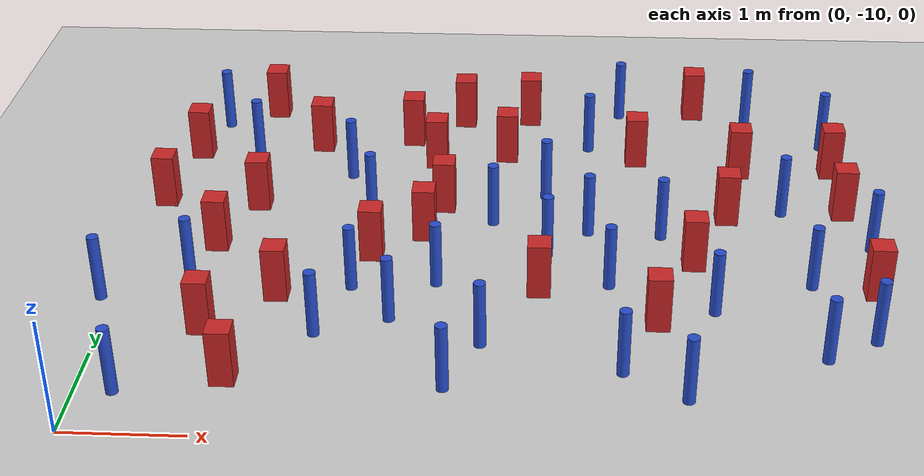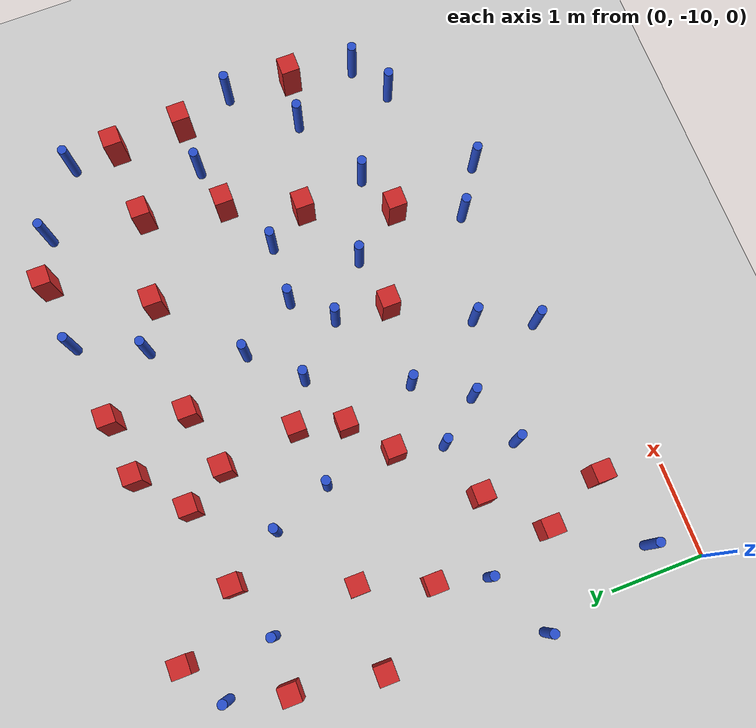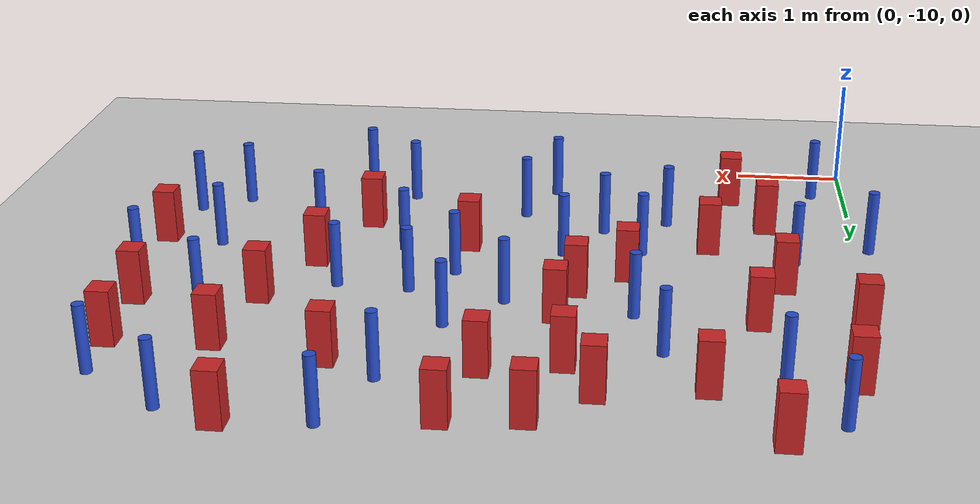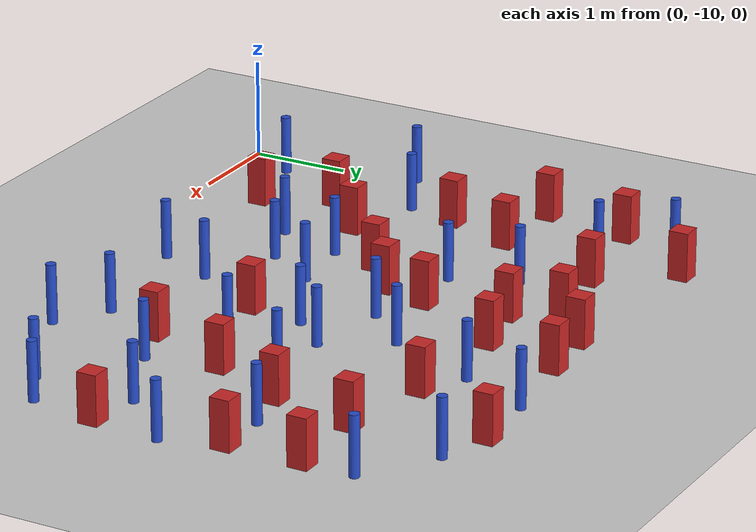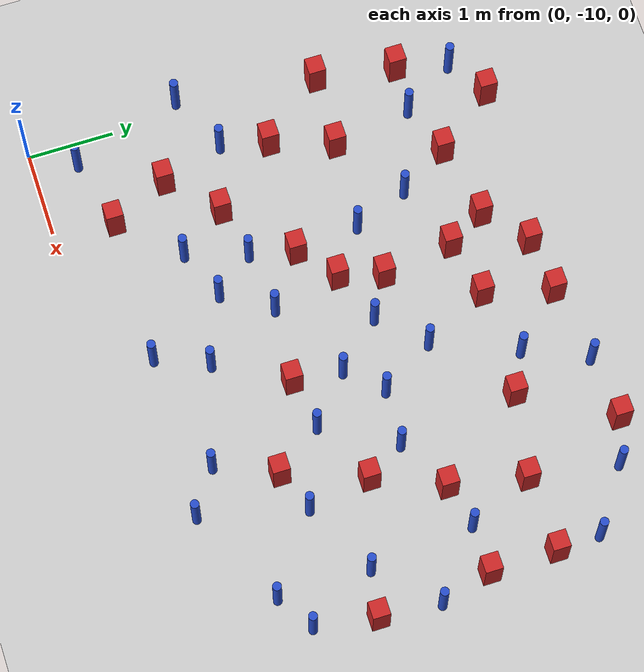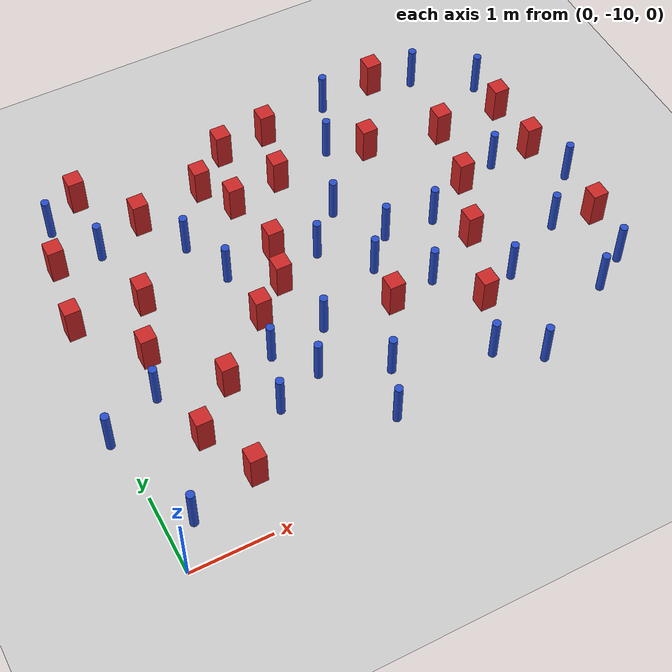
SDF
<sdf version="1.6">
 <world name="default">
  <model name="ground_plane">
   <static>1</static>
   <link name="link">
    <collision name="collision">
     <geometry><plane><normal>0 0 1</normal><size>100 100</size></plane></geometry>
     <surface><friction><ode><mu>100</mu><mu2>50</mu2></ode></friction></surface>
    </collision>
    <visual name="visual">
     <cast_shadows>0</cast_shadows>
     <geometry><plane><normal>0 0 1</normal><size>100 100</size></plane></geometry>
     <material>
      <ambient>1.0 1.0 1.0 1.0</ambient>
      <diffuse>0.8 0.8 0.8 1.0</diffuse>
      <specular>0.01 0.01 0.01 1.000000</specular>
     </material>
    </visual>
   </link>
  </model>
  <model name="pole_obstacle1">
   <static>true</static>
   <pose>6.48809205417 -7.17369330818 -3.09024884793e-07 -7.19054271911e-07 -2.1131507516e-07 -1.93935509277e-07</pose>
   <link name="link">
    <pose>0 0 0.3 0 -0 0</pose>
    <inertial>
     <mass>1</mass>
     <inertia><ixx>0.145833</ixx><ixy>0</ixy><ixz>0</ixz><iyy>0.145833</iyy><iyz>0</iyz><izz>0.125</izz></inertia>
    </inertial>
    <collision name="collision">
     <geometry><cylinder><radius>0.05</radius><length>.6</length></cylinder></geometry>
    </collision>
    <visual name="visual">
     <geometry><cylinder><radius>0.05</radius><length>.6</length></cylinder></geometry>
     <material>
      <script><name>Gazebo/Blue</name><uri>file://media/materials/scripts/gazebo.material</uri></script>
     </material>
    </visual>
   </link>
  </model>
  <model name="square_post_obstacle4">
   <static>true</static>
   <pose>3.57101372256 -7.95209607178 -4.36207812815e-07 3.75137919937e-06 9.77721102514e-07 2.47381364184e-05</pose>
   <link name="link">
    <pose>0 0 0.25 0 -0 0</pose>
    <inertial>
     <mass>100</mass>
     <inertia>
      <ixx>0.166667</ixx>
      <ixy>0</ixy>
      <ixz>0</ixz>
      <iyy>0.166667</iyy>
      <iyz>0</iyz>
      <izz>0.166667</izz>
     </inertia>
    </inertial>
    <collision name="collision"><geometry><box><size>.2 .2 .5</size></box></geometry></collision>
    <visual name="visual">
     <geometry><box><size>.2 .2 .5</size></box></geometry>
     <material>
      <script><name>Gazebo/Red</name><uri>file://media/materials/scripts/gazebo.material</uri></script>
     </material>
    </visual>
   </link>
  </model>
  <model name="pole_obstacle8">
   <static>true</static>
   <pose>0.40500175959 -5.05351949 -3.09024884793e-07 -7.19054271912e-07 -2.1131507513e-07 -1.93935509262e-07</pose>
   <link name="link">
    <pose>0 0 0.3 0 -0 0</pose>
    <inertial>
     <mass>1</mass>
     <inertia><ixx>0.145833</ixx><ixy>0</ixy><ixz>0</ixz><iyy>0.145833</iyy><iyz>0</iyz><izz>0.125</izz></inertia>
    </inertial>
    <collision name="collision">
     <geometry><cylinder><radius>0.05</radius><length>.6</length></cylinder></geometry>
    </collision>
    <visual name="visual">
     <geometry><cylinder><radius>0.05</radius><length>.6</length></cylinder></geometry>
     <material>
      <script><name>Gazebo/Blue</name><uri>file://media/materials/scripts/gazebo.material</uri></script>
     </material>
    </visual>
   </link>
  </model>
  <model name="square_post_obstacle14">
   <static>true</static>
   <pose>5.42709874171 -5.83818717794 -4.36207812815e-07 3.75137919937e-06 9.77721102514e-07 2.47381364184e-05</pose>
   <link name="link">
    <pose>0 0 0.25 0 -0 0</pose>
    <inertial>
     <mass>100</mass>
     <inertia>
      <ixx>0.166667</ixx>
      <ixy>0</ixy>
      <ixz>0</ixz>
      <iyy>0.166667</iyy>
      <iyz>0</iyz>
      <izz>0.166667</izz>
     </inertia>
    </inertial>
    <collision name="collision"><geometry><box><size>.2 .2 .5</size></box></geometry></collision>
    <visual name="visual">
     <geometry><box><size>.2 .2 .5</size></box></geometry>
     <material>
      <script><name>Gazebo/Red</name><uri>file://media/materials/scripts/gazebo.material</uri></script>
     </material>
    </visual>
   </link>
  </model>
  <model name="pole_obstacle19">
   <static>true</static>
   <pose>5.58174144384 -4.82042936975 -3.09024884793e-07 -7.19054271911e-07 -2.1131507516e-07 -1.93935509277e-07</pose>
   <link name="link">
    <pose>0 0 0.3 0 -0 0</pose>
    <inertial>
     <mass>1</mass>
     <inertia><ixx>0.145833</ixx><ixy>0</ixy><ixz>0</ixz><iyy>0.145833</iyy><iyz>0</iyz><izz>0.125</izz></inertia>
    </inertial>
    <collision name="collision">
     <geometry><cylinder><radius>0.05</radius><length>.6</length></cylinder></geometry>
    </collision>
    <visual name="visual">
     <geometry><cylinder><radius>0.05</radius><length>.6</length></cylinder></geometry>
     <material>
      <script><name>Gazebo/Blue</name><uri>file://media/materials/scripts/gazebo.material</uri></script>
     </material>
    </visual>
   </link>
  </model>
  <model name="square_post_obstacle16">
   <static>true</static>
   <pose>0.86441685356 -4.75954110779 -4.36207812815e-07 3.75137919937e-06 9.77721102514e-07 2.47381364184e-05</pose>
   <link name="link">
    <pose>0 0 0.25 0 -0 0</pose>
    <inertial>
     <mass>100</mass>
     <inertia>
      <ixx>0.166667</ixx>
      <ixy>0</ixy>
      <ixz>0</ixz>
      <iyy>0.166667</iyy>
      <iyz>0</iyz>
      <izz>0.166667</izz>
     </inertia>
    </inertial>
    <collision name="collision"><geometry><box><size>.2 .2 .5</size></box></geometry></collision>
    <visual name="visual">
     <geometry><box><size>.2 .2 .5</size></box></geometry>
     <material>
      <script><name>Gazebo/Red</name><uri>file://media/materials/scripts/gazebo.material</uri></script>
     </material>
    </visual>
   </link>
  </model>
  <model name="pole_obstacle43">
   <static>true</static>
   <pose>3.60631353478 -6.36651040037 -3.09024884793e-07 -7.19054271912e-07 -2.11315075134e-07 -1.93935509266e-07</pose>
   <link name="link">
    <pose>0 0 0.3 0 -0 0</pose>
    <inertial>
     <mass>1</mass>
     <inertia><ixx>0.145833</ixx><ixy>0</ixy><ixz>0</ixz><iyy>0.145833</iyy><iyz>0</iyz><izz>0.125</izz></inertia>
    </inertial>
    <collision name="collision">
     <geometry><cylinder><radius>0.05</radius><length>.6</length></cylinder></geometry>
    </collision>
    <visual name="visual">
     <geometry><cylinder><radius>0.05</radius><length>.6</length></cylinder></geometry>
     <material>
      <script><name>Gazebo/Blue</name><uri>file://media/materials/scripts/gazebo.material</uri></script>
     </material>
    </visual>
   </link>
  </model>
  <model name="pole_obstacle45">
   <static>true</static>
   <pose>4.3236556456 -4.70204553418 -3.09024884793e-07 -7.19054271911e-07 -2.1131507516e-07 -1.93935509277e-07</pose>
   <link name="link">
    <pose>0 0 0.3 0 -0 0</pose>
    <inertial>
     <mass>1</mass>
     <inertia><ixx>0.145833</ixx><ixy>0</ixy><ixz>0</ixz><iyy>0.145833</iyy><iyz>0</iyz><izz>0.125</izz></inertia>
    </inertial>
    <collision name="collision">
     <geometry><cylinder><radius>0.05</radius><length>.6</length></cylinder></geometry>
    </collision>
    <visual name="visual">
     <geometry><cylinder><radius>0.05</radius><length>.6</length></cylinder></geometry>
     <material>
      <script><name>Gazebo/Blue</name><uri>file://media/materials/scripts/gazebo.material</uri></script>
     </material>
    </visual>
   </link>
  </model>
  <model name="pole_obstacle47">
   <static>true</static>
   <pose>5.89058240361 -8.85058872005 -3.09024884793e-07 -7.19054271912e-07 -2.1131507513e-07 -1.93935509261e-07</pose>
   <link name="link">
    <pose>0 0 0.3 0 -0 0</pose>
    <inertial>
     <mass>1</mass>
     <inertia><ixx>0.145833</ixx><ixy>0</ixy><ixz>0</ixz><iyy>0.145833</iyy><iyz>0</iyz><izz>0.125</izz></inertia>
    </inertial>
    <collision name="collision">
     <geometry><cylinder><radius>0.05</radius><length>.6</length></cylinder></geometry>
    </collision>
    <visual name="visual">
     <geometry><cylinder><radius>0.05</radius><length>.6</length></cylinder></geometry>
     <material>
      <script><name>Gazebo/Blue</name><uri>file://media/materials/scripts/gazebo.material</uri></script>
     </material>
    </visual>
   </link>
  </model>
  <model name="square_post_obstacle44">
   <static>true</static>
   <pose>4.9054231305 -7.48862383246 -4.36207812815e-07 3.75137919937e-06 9.77721102514e-07 2.47381364184e-05</pose>
   <link name="link">
    <pose>0 0 0.25 0 -0 0</pose>
    <inertial>
     <mass>100</mass>
     <inertia>
      <ixx>0.166667</ixx>
      <ixy>0</ixy>
      <ixz>0</ixz>
      <iyy>0.166667</iyy>
      <iyz>0</iyz>
      <izz>0.166667</izz>
     </inertia>
    </inertial>
    <collision name="collision"><geometry><box><size>.2 .2 .5</size></box></geometry></collision>
    <visual name="visual">
     <geometry><box><size>.2 .2 .5</size></box></geometry>
     <material>
      <script><name>Gazebo/Red</name><uri>file://media/materials/scripts/gazebo.material</uri></script>
     </material>
    </visual>
   </link>
  </model>
  <model name="pole_obstacle59">
   <static>true</static>
   <pose>4.25340388266 -9.08597455583 -3.09024884793e-07 -7.19054271912e-07 -2.1131507513e-07 -1.93935509261e-07</pose>
   <link name="link">
    <pose>0 0 0.3 0 -0 0</pose>
    <inertial>
     <mass>1</mass>
     <inertia><ixx>0.145833</ixx><ixy>0</ixy><ixz>0</ixz><iyy>0.145833</iyy><iyz>0</iyz><izz>0.125</izz></inertia>
    </inertial>
    <collision name="collision">
     <geometry><cylinder><radius>0.05</radius><length>.6</length></cylinder></geometry>
    </collision>
    <visual name="visual">
     <geometry><cylinder><radius>0.05</radius><length>.6</length></cylinder></geometry>
     <material>
      <script><name>Gazebo/Blue</name><uri>file://media/materials/scripts/gazebo.material</uri></script>
     </material>
    </visual>
   </link>
  </model>
  <model name="pole_obstacle62">
   <static>true</static>
   <pose>1.97646290646 -7.95808642788 -3.09024884793e-07 -7.19054271911e-07 -2.1131507517e-07 -1.93935509283e-07</pose>
   <link name="link">
    <pose>0 0 0.3 0 -0 0</pose>
    <inertial>
     <mass>1</mass>
     <inertia><ixx>0.145833</ixx><ixy>0</ixy><ixz>0</ixz><iyy>0.145833</iyy><iyz>0</iyz><izz>0.125</izz></inertia>
    </inertial>
    <collision name="collision">
     <geometry><cylinder><radius>0.05</radius><length>.6</length></cylinder></geometry>
    </collision>
    <visual name="visual">
     <geometry><cylinder><radius>0.05</radius><length>.6</length></cylinder></geometry>
     <material>
      <script><name>Gazebo/Blue</name><uri>file://media/materials/scripts/gazebo.material</uri></script>
     </material>
    </visual>
   </link>
  </model>
  <model name="pole_obstacle63">
   <static>true</static>
   <pose>3.63198516604 -7.38031323959 -3.09024884793e-07 -7.19054271912e-07 -2.11315075134e-07 -1.93935509266e-07</pose>
   <link name="link">
    <pose>0 0 0.3 0 -0 0</pose>
    <inertial>
     <mass>1</mass>
     <inertia><ixx>0.145833</ixx><ixy>0</ixy><ixz>0</ixz><iyy>0.145833</iyy><iyz>0</iyz><izz>0.125</izz></inertia>
    </inertial>
    <collision name="collision">
     <geometry><cylinder><radius>0.05</radius><length>.6</length></cylinder></geometry>
    </collision>
    <visual name="visual">
     <geometry><cylinder><radius>0.05</radius><length>.6</length></cylinder></geometry>
     <material>
      <script><name>Gazebo/Blue</name><uri>file://media/materials/scripts/gazebo.material</uri></script>
     </material>
    </visual>
   </link>
  </model>
  <model name="square_post_obstacle55">
   <static>true</static>
   <pose>3.42765638652 -4.82885019431 -4.36207812815e-07 3.75137919937e-06 9.77721102514e-07 2.47381364184e-05</pose>
   <link name="link">
    <pose>0 0 0.25 0 -0 0</pose>
    <inertial>
     <mass>100</mass>
     <inertia>
      <ixx>0.166667</ixx>
      <ixy>0</ixy>
      <ixz>0</ixz>
      <iyy>0.166667</iyy>
      <iyz>0</iyz>
      <izz>0.166667</izz>
     </inertia>
    </inertial>
    <collision name="collision"><geometry><box><size>.2 .2 .5</size></box></geometry></collision>
    <visual name="visual">
     <geometry><box><size>.2 .2 .5</size></box></geometry>
     <material>
      <script><name>Gazebo/Red</name><uri>file://media/materials/scripts/gazebo.material</uri></script>
     </material>
    </visual>
   </link>
  </model>
  <model name="pole_obstacle71">
   <static>true</static>
   <pose>5.75891281308 -6.58576929097 -3.09024884793e-07 -7.19054271911e-07 -2.1131507516e-07 -1.93935509277e-07</pose>
   <link name="link">
    <pose>0 0 0.3 0 -0 0</pose>
    <inertial>
     <mass>1</mass>
     <inertia><ixx>0.145833</ixx><ixy>0</ixy><ixz>0</ixz><iyy>0.145833</iyy><iyz>0</iyz><izz>0.125</izz></inertia>
    </inertial>
    <collision name="collision">
     <geometry><cylinder><radius>0.05</radius><length>.6</length></cylinder></geometry>
    </collision>
    <visual name="visual">
     <geometry><cylinder><radius>0.05</radius><length>.6</length></cylinder></geometry>
     <material>
      <script><name>Gazebo/Blue</name><uri>file://media/materials/scripts/gazebo.material</uri></script>
     </material>
    </visual>
   </link>
  </model>
  <model name="pole_obstacle74">
   <static>true</static>
   <pose>6.27977150792 -5.2993740798 -3.09024884793e-07 -7.19054271911e-07 -2.1131507516e-07 -1.93935509277e-07</pose>
   <link name="link">
    <pose>0 0 0.3 0 -0 0</pose>
    <inertial>
     <mass>1</mass>
     <inertia><ixx>0.145833</ixx><ixy>0</ixy><ixz>0</ixz><iyy>0.145833</iyy><iyz>0</iyz><izz>0.125</izz></inertia>
    </inertial>
    <collision name="collision">
     <geometry><cylinder><radius>0.05</radius><length>.6</length></cylinder></geometry>
    </collision>
    <visual name="visual">
     <geometry><cylinder><radius>0.05</radius><length>.6</length></cylinder></geometry>
     <material>
      <script><name>Gazebo/Blue</name><uri>file://media/materials/scripts/gazebo.material</uri></script>
     </material>
    </visual>
   </link>
  </model>
  <model name="pole_obstacle75">
   <static>true</static>
   <pose>6.31661885191 -8.58566461783 -3.09024884793e-07 -7.19054271912e-07 -2.1131507513e-07 -1.93935509261e-07</pose>
   <link name="link">
    <pose>0 0 0.3 0 -0 0</pose>
    <inertial>
     <mass>1</mass>
     <inertia><ixx>0.145833</ixx><ixy>0</ixy><ixz>0</ixz><iyy>0.145833</iyy><iyz>0</iyz><izz>0.125</izz></inertia>
    </inertial>
    <collision name="collision">
     <geometry><cylinder><radius>0.05</radius><length>.6</length></cylinder></geometry>
    </collision>
    <visual name="visual">
     <geometry><cylinder><radius>0.05</radius><length>.6</length></cylinder></geometry>
     <material>
      <script><name>Gazebo/Blue</name><uri>file://media/materials/scripts/gazebo.material</uri></script>
     </material>
    </visual>
   </link>
  </model>
  <model name="pole_obstacle79">
   <static>true</static>
   <pose>2.01629400774 -6.68462353078 -3.09024884793e-07 -7.19054271912e-07 -2.11315075136e-07 -1.93935509266e-07</pose>
   <link name="link">
    <pose>0 0 0.3 0 -0 0</pose>
    <inertial>
     <mass>1</mass>
     <inertia><ixx>0.145833</ixx><ixy>0</ixy><ixz>0</ixz><iyy>0.145833</iyy><iyz>0</iyz><izz>0.125</izz></inertia>
    </inertial>
    <collision name="collision">
     <geometry><cylinder><radius>0.05</radius><length>.6</length></cylinder></geometry>
    </collision>
    <visual name="visual">
     <geometry><cylinder><radius>0.05</radius><length>.6</length></cylinder></geometry>
     <material>
      <script><name>Gazebo/Blue</name><uri>file://media/materials/scripts/gazebo.material</uri></script>
     </material>
    </visual>
   </link>
  </model>
  <model name="square_post_obstacle68">
   <static>true</static>
   <pose>0.105928565827 -6.57649382604 -4.36207812815e-07 3.75137919937e-06 9.77721102514e-07 2.47381364184e-05</pose>
   <link name="link">
    <pose>0 0 0.25 0 -0 0</pose>
    <inertial>
     <mass>100</mass>
     <inertia>
      <ixx>0.166667</ixx>
      <ixy>0</ixy>
      <ixz>0</ixz>
      <iyy>0.166667</iyy>
      <iyz>0</iyz>
      <izz>0.166667</izz>
     </inertia>
    </inertial>
    <collision name="collision"><geometry><box><size>.2 .2 .5</size></box></geometry></collision>
    <visual name="visual">
     <geometry><box><size>.2 .2 .5</size></box></geometry>
     <material>
      <script><name>Gazebo/Red</name><uri>file://media/materials/scripts/gazebo.material</uri></script>
     </material>
    </visual>
   </link>
  </model>
  <model name="pole_obstacle80">
   <static>true</static>
   <pose>4.16649824505 -7.8521720454 -3.09024884793e-07 -7.19054271911e-07 -2.1131507516e-07 -1.93935509277e-07</pose>
   <link name="link">
    <pose>0 0 0.3 0 -0 0</pose>
    <inertial>
     <mass>1</mass>
     <inertia><ixx>0.145833</ixx><ixy>0</ixy><ixz>0</ixz><iyy>0.145833</iyy><iyz>0</iyz><izz>0.125</izz></inertia>
    </inertial>
    <collision name="collision">
     <geometry><cylinder><radius>0.05</radius><length>.6</length></cylinder></geometry>
    </collision>
    <visual name="visual">
     <geometry><cylinder><radius>0.05</radius><length>.6</length></cylinder></geometry>
     <material>
      <script><name>Gazebo/Blue</name><uri>file://media/materials/scripts/gazebo.material</uri></script>
     </material>
    </visual>
   </link>
  </model>
  <model name="square_post_obstacle71">
   <static>true</static>
   <pose>0.254372862998 -5.65609828832 -4.36207812815e-07 3.75137919937e-06 9.77721102514e-07 2.47381364184e-05</pose>
   <link name="link">
    <pose>0 0 0.25 0 -0 0</pose>
    <inertial>
     <mass>100</mass>
     <inertia>
      <ixx>0.166667</ixx>
      <ixy>0</ixy>
      <ixz>0</ixz>
      <iyy>0.166667</iyy>
      <iyz>0</iyz>
      <izz>0.166667</izz>
     </inertia>
    </inertial>
    <collision name="collision"><geometry><box><size>.2 .2 .5</size></box></geometry></collision>
    <visual name="visual">
     <geometry><box><size>.2 .2 .5</size></box></geometry>
     <material>
      <script><name>Gazebo/Red</name><uri>file://media/materials/scripts/gazebo.material</uri></script>
     </material>
    </visual>
   </link>
  </model>
  <model name="pole_obstacle85">
   <static>true</static>
   <pose>1.76453035123 -6.04418195792 -3.09024884793e-07 -7.19054271912e-07 -2.11315075134e-07 -1.93935509265e-07</pose>
   <link name="link">
    <pose>0 0 0.3 0 -0 0</pose>
    <inertial>
     <mass>1</mass>
     <inertia><ixx>0.145833</ixx><ixy>0</ixy><ixz>0</ixz><iyy>0.145833</iyy><iyz>0</iyz><izz>0.125</izz></inertia>
    </inertial>
    <collision name="collision">
     <geometry><cylinder><radius>0.05</radius><length>.6</length></cylinder></geometry>
    </collision>
    <visual name="visual">
     <geometry><cylinder><radius>0.05</radius><length>.6</length></cylinder></geometry>
     <material>
      <script><name>Gazebo/Blue</name><uri>file://media/materials/scripts/gazebo.material</uri></script>
     </material>
    </visual>
   </link>
  </model>
  <model name="square_post_obstacle83">
   <static>true</static>
   <pose>0.719269566033 -7.33229480249 -4.36207812815e-07 3.75137919937e-06 9.77721102514e-07 2.47381364184e-05</pose>
   <link name="link">
    <pose>0 0 0.25 0 -0 0</pose>
    <inertial>
     <mass>100</mass>
     <inertia>
      <ixx>0.166667</ixx>
      <ixy>0</ixy>
      <ixz>0</ixz>
      <iyy>0.166667</iyy>
      <iyz>0</iyz>
      <izz>0.166667</izz>
     </inertia>
    </inertial>
    <collision name="collision"><geometry><box><size>.2 .2 .5</size></box></geometry></collision>
    <visual name="visual">
     <geometry><box><size>.2 .2 .5</size></box></geometry>
     <material>
      <script><name>Gazebo/Red</name><uri>file://media/materials/scripts/gazebo.material</uri></script>
     </material>
    </visual>
   </link>
  </model>
  <model name="pole_obstacle94">
   <static>true</static>
   <pose>3.99373346216 -6.99468903794 -3.09024884793e-07 -7.19054271912e-07 -2.11315075147e-07 -1.93935509272e-07</pose>
   <link name="link">
    <pose>0 0 0.3 0 -0 0</pose>
    <inertial>
     <mass>1</mass>
     <inertia><ixx>0.145833</ixx><ixy>0</ixy><ixz>0</ixz><iyy>0.145833</iyy><iyz>0</iyz><izz>0.125</izz></inertia>
    </inertial>
    <collision name="collision">
     <geometry><cylinder><radius>0.05</radius><length>.6</length></cylinder></geometry>
    </collision>
    <visual name="visual">
     <geometry><cylinder><radius>0.05</radius><length>.6</length></cylinder></geometry>
     <material>
      <script><name>Gazebo/Blue</name><uri>file://media/materials/scripts/gazebo.material</uri></script>
     </material>
    </visual>
   </link>
  </model>
  <model name="square_post_obstacle91">
   <static>true</static>
   <pose>2.67740275657 -6.5851803636 -4.36207812815e-07 3.75137919937e-06 9.77721102514e-07 2.47381364184e-05</pose>
   <link name="link">
    <pose>0 0 0.25 0 -0 0</pose>
    <inertial>
     <mass>100</mass>
     <inertia>
      <ixx>0.166667</ixx>
      <ixy>0</ixy>
      <ixz>0</ixz>
      <iyy>0.166667</iyy>
      <iyz>0</iyz>
      <izz>0.166667</izz>
     </inertia>
    </inertial>
    <collision name="collision"><geometry><box><size>.2 .2 .5</size></box></geometry></collision>
    <visual name="visual">
     <geometry><box><size>.2 .2 .5</size></box></geometry>
     <material>
      <script><name>Gazebo/Red</name><uri>file://media/materials/scripts/gazebo.material</uri></script>
     </material>
    </visual>
   </link>
  </model>
  <model name="square_post_obstacle94">
   <static>true</static>
   <pose>2.29338925497 -5.30892049711 -4.36207812815e-07 3.75137919937e-06 9.77721102514e-07 2.47381364184e-05</pose>
   <link name="link">
    <pose>0 0 0.25 0 -0 0</pose>
    <inertial>
     <mass>100</mass>
     <inertia>
      <ixx>0.166667</ixx>
      <ixy>0</ixy>
      <ixz>0</ixz>
      <iyy>0.166667</iyy>
      <iyz>0</iyz>
      <izz>0.166667</izz>
     </inertia>
    </inertial>
    <collision name="collision"><geometry><box><size>.2 .2 .5</size></box></geometry></collision>
    <visual name="visual">
     <geometry><box><size>.2 .2 .5</size></box></geometry>
     <material>
      <script><name>Gazebo/Red</name><uri>file://media/materials/scripts/gazebo.material</uri></script>
     </material>
    </visual>
   </link>
  </model>
  <model name="square_post_obstacle97">
   <static>true</static>
   <pose>6.29830586947 -5.80716456378 -4.36207812815e-07 3.75137919937e-06 9.77721102514e-07 2.47381364184e-05</pose>
   <link name="link">
    <pose>0 0 0.25 0 -0 0</pose>
    <inertial>
     <mass>100</mass>
     <inertia>
      <ixx>0.166667</ixx>
      <ixy>0</ixy>
      <ixz>0</ixz>
      <iyy>0.166667</iyy>
      <iyz>0</iyz>
      <izz>0.166667</izz>
     </inertia>
    </inertial>
    <collision name="collision"><geometry><box><size>.2 .2 .5</size></box></geometry></collision>
    <visual name="visual">
     <geometry><box><size>.2 .2 .5</size></box></geometry>
     <material>
      <script><name>Gazebo/Red</name><uri>file://media/materials/scripts/gazebo.material</uri></script>
     </material>
    </visual>
   </link>
  </model>
  <model name="pole_obstacle107">
   <static>true</static>
   <pose>1.74908897043 -8.65412429838 -3.09024884793e-07 -7.19054271912e-07 -2.1131507515e-07 -1.93935509273e-07</pose>
   <link name="link">
    <pose>0 0 0.3 0 -0 0</pose>
    <inertial>
     <mass>1</mass>
     <inertia><ixx>0.145833</ixx><ixy>0</ixy><ixz>0</ixz><iyy>0.145833</iyy><iyz>0</iyz><izz>0.125</izz></inertia>
    </inertial>
    <collision name="collision">
     <geometry><cylinder><radius>0.05</radius><length>.6</length></cylinder></geometry>
    </collision>
    <visual name="visual">
     <geometry><cylinder><radius>0.05</radius><length>.6</length></cylinder></geometry>
     <material>
      <script><name>Gazebo/Blue</name><uri>file://media/materials/scripts/gazebo.material</uri></script>
     </material>
    </visual>
   </link>
  </model>
  <model name="square_post_obstacle109">
   <static>true</static>
   <pose>5.06491364532 -4.64301456551 -4.36207812815e-07 3.75137919937e-06 9.77721102514e-07 2.47381364184e-05</pose>
   <link name="link">
    <pose>0 0 0.25 0 -0 0</pose>
    <inertial>
     <mass>100</mass>
     <inertia>
      <ixx>0.166667</ixx>
      <ixy>0</ixy>
      <ixz>0</ixz>
      <iyy>0.166667</iyy>
      <iyz>0</iyz>
      <izz>0.166667</izz>
     </inertia>
    </inertial>
    <collision name="collision"><geometry><box><size>.2 .2 .5</size></box></geometry></collision>
    <visual name="visual">
     <geometry><box><size>.2 .2 .5</size></box></geometry>
     <material>
      <script><name>Gazebo/Red</name><uri>file://media/materials/scripts/gazebo.material</uri></script>
     </material>
    </visual>
   </link>
  </model>
  <model name="square_post_obstacle113">
   <static>true</static>
   <pose>4.45928911065 -5.64991418092 -4.36207812815e-07 3.75137919937e-06 9.77721102514e-07 2.47381364184e-05</pose>
   <link name="link">
    <pose>0 0 0.25 0 -0 0</pose>
    <inertial>
     <mass>100</mass>
     <inertia>
      <ixx>0.166667</ixx>
      <ixy>0</ixy>
      <ixz>0</ixz>
      <iyy>0.166667</iyy>
      <iyz>0</iyz>
      <izz>0.166667</izz>
     </inertia>
    </inertial>
    <collision name="collision"><geometry><box><size>.2 .2 .5</size></box></geometry></collision>
    <visual name="visual">
     <geometry><box><size>.2 .2 .5</size></box></geometry>
     <material>
      <script><name>Gazebo/Red</name><uri>file://media/materials/scripts/gazebo.material</uri></script>
     </material>
    </visual>
   </link>
  </model>
  <model name="pole_obstacle121">
   <static>true</static>
   <pose>4.75106260242 -9.41760621046 -3.09024884793e-07 -7.19054271912e-07 -2.1131507513e-07 -1.93935509261e-07</pose>
   <link name="link">
    <pose>0 0 0.3 0 -0 0</pose>
    <inertial>
     <mass>1</mass>
     <inertia><ixx>0.145833</ixx><ixy>0</ixy><ixz>0</ixz><iyy>0.145833</iyy><iyz>0</iyz><izz>0.125</izz></inertia>
    </inertial>
    <collision name="collision">
     <geometry><cylinder><radius>0.05</radius><length>.6</length></cylinder></geometry>
    </collision>
    <visual name="visual">
     <geometry><cylinder><radius>0.05</radius><length>.6</length></cylinder></geometry>
     <material>
      <script><name>Gazebo/Blue</name><uri>file://media/materials/scripts/gazebo.material</uri></script>
     </material>
    </visual>
   </link>
  </model>
  <model name="square_post_obstacle122">
   <static>true</static>
   <pose>1.41481459742 -5.46550860324 -4.36207812815e-07 3.75137919937e-06 9.77721102514e-07 2.47381364184e-05</pose>
   <link name="link">
    <pose>0 0 0.25 0 -0 0</pose>
    <inertial>
     <mass>100</mass>
     <inertia>
      <ixx>0.166667</ixx>
      <ixy>0</ixy>
      <ixz>0</ixz>
      <iyy>0.166667</iyy>
      <iyz>0</iyz>
      <izz>0.166667</izz>
     </inertia>
    </inertial>
    <collision name="collision"><geometry><box><size>.2 .2 .5</size></box></geometry></collision>
    <visual name="visual">
     <geometry><box><size>.2 .2 .5</size></box></geometry>
     <material>
      <script><name>Gazebo/Red</name><uri>file://media/materials/scripts/gazebo.material</uri></script>
     </material>
    </visual>
   </link>
  </model>
  <model name="pole_obstacle137">
   <static>true</static>
   <pose>0.305026295121 -9.49100099164 -3.09024884793e-07 -7.19054271911e-07 -2.11315075166e-07 -1.93935509282e-07</pose>
   <link name="link">
    <pose>0 0 0.3 0 -0 0</pose>
    <inertial>
     <mass>1</mass>
     <inertia><ixx>0.145833</ixx><ixy>0</ixy><ixz>0</ixz><iyy>0.145833</iyy><iyz>0</iyz><izz>0.125</izz></inertia>
    </inertial>
    <collision name="collision">
     <geometry><cylinder><radius>0.05</radius><length>.6</length></cylinder></geometry>
    </collision>
    <visual name="visual">
     <geometry><cylinder><radius>0.05</radius><length>.6</length></cylinder></geometry>
     <material>
      <script><name>Gazebo/Blue</name><uri>file://media/materials/scripts/gazebo.material</uri></script>
     </material>
    </visual>
   </link>
  </model>
  <model name="pole_obstacle145">
   <static>true</static>
   <pose>2.34177745985 -8.41962877901 -3.09024884848e-07 -7.19054271902e-07 -2.11315075199e-07 -1.93935509286e-07</pose>
   <link name="link">
    <pose>0 0 0.3 0 -0 0</pose>
    <inertial>
     <mass>1</mass>
     <inertia><ixx>0.145833</ixx><ixy>0</ixy><ixz>0</ixz><iyy>0.145833</iyy><iyz>0</iyz><izz>0.125</izz></inertia>
    </inertial>
    <collision name="collision">
     <geometry><cylinder><radius>0.05</radius><length>.6</length></cylinder></geometry>
    </collision>
    <visual name="visual">
     <geometry><cylinder><radius>0.05</radius><length>.6</length></cylinder></geometry>
     <material>
      <script><name>Gazebo/Blue</name><uri>file://media/materials/scripts/gazebo.material</uri></script>
     </material>
    </visual>
   </link>
  </model>
  <model name="square_post_obstacle145">
   <static>true</static>
   <pose>5.24846264113 -6.70531517431 -4.36207812815e-07 3.75137919937e-06 9.77721102514e-07 2.47381364184e-05</pose>
   <link name="link">
    <pose>0 0 0.25 0 -0 0</pose>
    <inertial>
     <mass>100</mass>
     <inertia>
      <ixx>0.166667</ixx>
      <ixy>0</ixy>
      <ixz>0</ixz>
      <iyy>0.166667</iyy>
      <iyz>0</iyz>
      <izz>0.166667</izz>
     </inertia>
    </inertial>
    <collision name="collision"><geometry><box><size>.2 .2 .5</size></box></geometry></collision>
    <visual name="visual">
     <geometry><box><size>.2 .2 .5</size></box></geometry>
     <material>
      <script><name>Gazebo/Red</name><uri>file://media/materials/scripts/gazebo.material</uri></script>
     </material>
    </visual>
   </link>
  </model>
  <model name="square_post_obstacle148">
   <static>true</static>
   <pose>6.42367717274 -7.88178356975 -4.36207812815e-07 3.75137919937e-06 9.77721102514e-07 2.47381364184e-05</pose>
   <link name="link">
    <pose>0 0 0.25 0 -0 0</pose>
    <inertial>
     <mass>100</mass>
     <inertia>
      <ixx>0.166667</ixx>
      <ixy>0</ixy>
      <ixz>0</ixz>
      <iyy>0.166667</iyy>
      <iyz>0</iyz>
      <izz>0.166667</izz>
     </inertia>
    </inertial>
    <collision name="collision"><geometry><box><size>.2 .2 .5</size></box></geometry></collision>
    <visual name="visual">
     <geometry><box><size>.2 .2 .5</size></box></geometry>
     <material>
      <script><name>Gazebo/Red</name><uri>file://media/materials/scripts/gazebo.material</uri></script>
     </material>
    </visual>
   </link>
  </model>
  <model name="pole_obstacle161">
   <static>true</static>
   <pose>2.69455359491 -7.87346331447 -3.09024884793e-07 -7.19054271912e-07 -2.11315075134e-07 -1.93935509266e-07</pose>
   <link name="link">
    <pose>0 0 0.3 0 -0 0</pose>
    <inertial>
     <mass>1</mass>
     <inertia><ixx>0.145833</ixx><ixy>0</ixy><ixz>0</ixz><iyy>0.145833</iyy><iyz>0</iyz><izz>0.125</izz></inertia>
    </inertial>
    <collision name="collision">
     <geometry><cylinder><radius>0.05</radius><length>.6</length></cylinder></geometry>
    </collision>
    <visual name="visual">
     <geometry><cylinder><radius>0.05</radius><length>.6</length></cylinder></geometry>
     <material>
      <script><name>Gazebo/Blue</name><uri>file://media/materials/scripts/gazebo.material</uri></script>
     </material>
    </visual>
   </link>
  </model>
  <model name="square_post_obstacle160">
   <static>true</static>
   <pose>1.13532361051 -9.29040162924 -4.36207812815e-07 3.75137919937e-06 9.77721102514e-07 2.47381364184e-05</pose>
   <link name="link">
    <pose>0 0 0.25 0 -0 0</pose>
    <inertial>
     <mass>100</mass>
     <inertia>
      <ixx>0.166667</ixx>
      <ixy>0</ixy>
      <ixz>0</ixz>
      <iyy>0.166667</iyy>
      <iyz>0</iyz>
      <izz>0.166667</izz>
     </inertia>
    </inertial>
    <collision name="collision"><geometry><box><size>.2 .2 .5</size></box></geometry></collision>
    <visual name="visual">
     <geometry><box><size>.2 .2 .5</size></box></geometry>
     <material>
      <script><name>Gazebo/Red</name><uri>file://media/materials/scripts/gazebo.material</uri></script>
     </material>
    </visual>
   </link>
  </model>
  <model name="pole_obstacle166">
   <static>true</static>
   <pose>5.89435253935 -7.79246427402 -3.09024884793e-07 -7.19054271911e-07 -2.1131507516e-07 -1.93935509277e-07</pose>
   <link name="link">
    <pose>0 0 0.3 0 -0 0</pose>
    <inertial>
     <mass>1</mass>
     <inertia><ixx>0.145833</ixx><ixy>0</ixy><ixz>0</ixz><iyy>0.145833</iyy><iyz>0</iyz><izz>0.125</izz></inertia>
    </inertial>
    <collision name="collision">
     <geometry><cylinder><radius>0.05</radius><length>.6</length></cylinder></geometry>
    </collision>
    <visual name="visual">
     <geometry><cylinder><radius>0.05</radius><length>.6</length></cylinder></geometry>
     <material>
      <script><name>Gazebo/Blue</name><uri>file://media/materials/scripts/gazebo.material</uri></script>
     </material>
    </visual>
   </link>
  </model>
  <model name="pole_obstacle168">
   <static>true</static>
   <pose>-0.115558895132 -8.19746898628 -3.09024884793e-07 -7.19054271912e-07 -2.11315075151e-07 -1.93935509274e-07</pose>
   <link name="link">
    <pose>0 0 0.3 0 -0 0</pose>
    <inertial>
     <mass>1</mass>
     <inertia><ixx>0.145833</ixx><ixy>0</ixy><ixz>0</ixz><iyy>0.145833</iyy><iyz>0</iyz><izz>0.125</izz></inertia>
    </inertial>
    <collision name="collision">
     <geometry><cylinder><radius>0.05</radius><length>.6</length></cylinder></geometry>
    </collision>
    <visual name="visual">
     <geometry><cylinder><radius>0.05</radius><length>.6</length></cylinder></geometry>
     <material>
      <script><name>Gazebo/Blue</name><uri>file://media/materials/scripts/gazebo.material</uri></script>
     </material>
    </visual>
   </link>
  </model>
  <model name="pole_obstacle173">
   <static>true</static>
   <pose>3.11203674635 -8.749190416 -3.09024884848e-07 -7.19054271902e-07 -2.11315075199e-07 -1.93935509286e-07</pose>
   <link name="link">
    <pose>0 0 0.3 0 -0 0</pose>
    <inertial>
     <mass>1</mass>
     <inertia><ixx>0.145833</ixx><ixy>0</ixy><ixz>0</ixz><iyy>0.145833</iyy><iyz>0</iyz><izz>0.125</izz></inertia>
    </inertial>
    <collision name="collision">
     <geometry><cylinder><radius>0.05</radius><length>.6</length></cylinder></geometry>
    </collision>
    <visual name="visual">
     <geometry><cylinder><radius>0.05</radius><length>.6</length></cylinder></geometry>
     <material>
      <script><name>Gazebo/Blue</name><uri>file://media/materials/scripts/gazebo.material</uri></script>
     </material>
    </visual>
   </link>
  </model>
  <model name="pole_obstacle178">
   <static>true</static>
   <pose>4.00629063871 -5.41694226531 -3.09024884793e-07 -7.19054271911e-07 -2.11315075159e-07 -1.93935509278e-07</pose>
   <link name="link">
    <pose>0 0 0.3 0 -0 0</pose>
    <inertial>
     <mass>1</mass>
     <inertia><ixx>0.145833</ixx><ixy>0</ixy><ixz>0</ixz><iyy>0.145833</iyy><iyz>0</iyz><izz>0.125</izz></inertia>
    </inertial>
    <collision name="collision">
     <geometry><cylinder><radius>0.05</radius><length>.6</length></cylinder></geometry>
    </collision>
    <visual name="visual">
     <geometry><cylinder><radius>0.05</radius><length>.6</length></cylinder></geometry>
     <material>
      <script><name>Gazebo/Blue</name><uri>file://media/materials/scripts/gazebo.material</uri></script>
     </material>
    </visual>
   </link>
  </model>
  <model name="square_post_obstacle180">
   <static>true</static>
   <pose>3.22009324593 -5.60989499147 -4.36207812815e-07 3.75137919937e-06 9.77721102514e-07 2.47381364184e-05</pose>
   <link name="link">
    <pose>0 0 0.25 0 -0 0</pose>
    <inertial>
     <mass>100</mass>
     <inertia>
      <ixx>0.166667</ixx>
      <ixy>0</ixy>
      <ixz>0</ixz>
      <iyy>0.166667</iyy>
      <iyz>0</iyz>
      <izz>0.166667</izz>
     </inertia>
    </inertial>
    <collision name="collision"><geometry><box><size>.2 .2 .5</size></box></geometry></collision>
    <visual name="visual">
     <geometry><box><size>.2 .2 .5</size></box></geometry>
     <material>
      <script><name>Gazebo/Red</name><uri>file://media/materials/scripts/gazebo.material</uri></script>
     </material>
    </visual>
   </link>
  </model>
  <model name="pole_obstacle183">
   <static>true</static>
   <pose>0.581221635715 -7.87461469055 -3.09024884793e-07 -7.19054271912e-07 -2.11315075129e-07 -1.93935509261e-07</pose>
   <link name="link">
    <pose>0 0 0.3 0 -0 0</pose>
    <inertial>
     <mass>1</mass>
     <inertia><ixx>0.145833</ixx><ixy>0</ixy><ixz>0</ixz><iyy>0.145833</iyy><iyz>0</iyz><izz>0.125</izz></inertia>
    </inertial>
    <collision name="collision">
     <geometry><cylinder><radius>0.05</radius><length>.6</length></cylinder></geometry>
    </collision>
    <visual name="visual">
     <geometry><cylinder><radius>0.05</radius><length>.6</length></cylinder></geometry>
     <material>
      <script><name>Gazebo/Blue</name><uri>file://media/materials/scripts/gazebo.material</uri></script>
     </material>
    </visual>
   </link>
  </model>
  <model name="pole_obstacle184">
   <static>true</static>
   <pose>5.03980651966 -8.21586292324 -3.09024884793e-07 -7.19054271912e-07 -2.1131507513e-07 -1.93935509261e-07</pose>
   <link name="link">
    <pose>0 0 0.3 0 -0 0</pose>
    <inertial>
     <mass>1</mass>
     <inertia><ixx>0.145833</ixx><ixy>0</ixy><ixz>0</ixz><iyy>0.145833</iyy><iyz>0</iyz><izz>0.125</izz></inertia>
    </inertial>
    <collision name="collision">
     <geometry><cylinder><radius>0.05</radius><length>.6</length></cylinder></geometry>
    </collision>
    <visual name="visual">
     <geometry><cylinder><radius>0.05</radius><length>.6</length></cylinder></geometry>
     <material>
      <script><name>Gazebo/Blue</name><uri>file://media/materials/scripts/gazebo.material</uri></script>
     </material>
    </visual>
   </link>
  </model>
  <model name="pole_obstacle187">
   <static>true</static>
   <pose>2.85145118096 -9.34316986897 -3.09024884848e-07 -7.19054271902e-07 -2.11315075199e-07 -1.93935509286e-07</pose>
   <link name="link">
    <pose>0 0 0.3 0 -0 0</pose>
    <inertial>
     <mass>1</mass>
     <inertia><ixx>0.145833</ixx><ixy>0</ixy><ixz>0</ixz><iyy>0.145833</iyy><iyz>0</iyz><izz>0.125</izz></inertia>
    </inertial>
    <collision name="collision">
     <geometry><cylinder><radius>0.05</radius><length>.6</length></cylinder></geometry>
    </collision>
    <visual name="visual">
     <geometry><cylinder><radius>0.05</radius><length>.6</length></cylinder></geometry>
     <material>
      <script><name>Gazebo/Blue</name><uri>file://media/materials/scripts/gazebo.material</uri></script>
     </material>
    </visual>
   </link>
  </model>
  <model name="square_post_obstacle195">
   <static>true</static>
   <pose>2.78066326068 -4.89200722456 -4.36207812815e-07 3.75137919937e-06 9.77721102514e-07 2.47381364184e-05</pose>
   <link name="link">
    <pose>0 0 0.25 0 -0 0</pose>
    <inertial>
     <mass>100</mass>
     <inertia>
      <ixx>0.166667</ixx>
      <ixy>0</ixy>
      <ixz>0</ixz>
      <iyy>0.166667</iyy>
      <iyz>0</iyz>
      <izz>0.166667</izz>
     </inertia>
    </inertial>
    <collision name="collision"><geometry><box><size>.2 .2 .5</size></box></geometry></collision>
    <visual name="visual">
     <geometry><box><size>.2 .2 .5</size></box></geometry>
     <material>
      <script><name>Gazebo/Red</name><uri>file://media/materials/scripts/gazebo.material</uri></script>
     </material>
    </visual>
   </link>
  </model>
  <model name="square_post_obstacle196">
   <static>true</static>
   <pose>1.36427627244 -8.09934626802 -4.36207812815e-07 3.75137919937e-06 9.77721102514e-07 2.47381364184e-05</pose>
   <link name="link">
    <pose>0 0 0.25 0 -0 0</pose>
    <inertial>
     <mass>100</mass>
     <inertia>
      <ixx>0.166667</ixx>
      <ixy>0</ixy>
      <ixz>0</ixz>
      <iyy>0.166667</iyy>
      <iyz>0</iyz>
      <izz>0.166667</izz>
     </inertia>
    </inertial>
    <collision name="collision"><geometry><box><size>.2 .2 .5</size></box></geometry></collision>
    <visual name="visual">
     <geometry><box><size>.2 .2 .5</size></box></geometry>
     <material>
      <script><name>Gazebo/Red</name><uri>file://media/materials/scripts/gazebo.material</uri></script>
     </material>
    </visual>
   </link>
  </model>
  <model name="square_post_obstacle201">
   <static>true</static>
   <pose>6.31023989303 -6.57876563987 -4.36207812815e-07 3.75137919937e-06 9.77721102514e-07 2.47381364184e-05</pose>
   <link name="link">
    <pose>0 0 0.25 0 -0 0</pose>
    <inertial>
     <mass>100</mass>
     <inertia>
      <ixx>0.166667</ixx>
      <ixy>0</ixy>
      <ixz>0</ixz>
      <iyy>0.166667</iyy>
      <iyz>0</iyz>
      <izz>0.166667</izz>
     </inertia>
    </inertial>
    <collision name="collision"><geometry><box><size>.2 .2 .5</size></box></geometry></collision>
    <visual name="visual">
     <geometry><box><size>.2 .2 .5</size></box></geometry>
     <material>
      <script><name>Gazebo/Red</name><uri>file://media/materials/scripts/gazebo.material</uri></script>
     </material>
    </visual>
   </link>
  </model>
  <model name="square_post_obstacle205">
   <static>true</static>
   <pose>2.09845684643 -7.44027788461 -4.36207812815e-07 3.75137919937e-06 9.77721102514e-07 2.47381364184e-05</pose>
   <link name="link">
    <pose>0 0 0.25 0 -0 0</pose>
    <inertial>
     <mass>100</mass>
     <inertia>
      <ixx>0.166667</ixx>
      <ixy>0</ixy>
      <ixz>0</ixz>
      <iyy>0.166667</iyy>
      <iyz>0</iyz>
      <izz>0.166667</izz>
     </inertia>
    </inertial>
    <collision name="collision"><geometry><box><size>.2 .2 .5</size></box></geometry></collision>
    <visual name="visual">
     <geometry><box><size>.2 .2 .5</size></box></geometry>
     <material>
      <script><name>Gazebo/Red</name><uri>file://media/materials/scripts/gazebo.material</uri></script>
     </material>
    </visual>
   </link>
  </model>
  <model name="pole_obstacle203">
   <static>true</static>
   <pose>4.64128525338 -7.03689425904 -3.09024884793e-07 -7.19054271911e-07 -2.1131507516e-07 -1.93935509277e-07</pose>
   <link name="link">
    <pose>0 0 0.3 0 -0 0</pose>
    <inertial>
     <mass>1</mass>
     <inertia><ixx>0.145833</ixx><ixy>0</ixy><ixz>0</ixz><iyy>0.145833</iyy><iyz>0</iyz><izz>0.125</izz></inertia>
    </inertial>
    <collision name="collision">
     <geometry><cylinder><radius>0.05</radius><length>.6</length></cylinder></geometry>
    </collision>
    <visual name="visual">
     <geometry><cylinder><radius>0.05</radius><length>.6</length></cylinder></geometry>
     <material>
      <script><name>Gazebo/Blue</name><uri>file://media/materials/scripts/gazebo.material</uri></script>
     </material>
    </visual>
   </link>
  </model>
  <model name="pole_obstacle210">
   <static>true</static>
   <pose>0.811834941897 -5.67935343906 -3.09024884793e-07 -7.19054271912e-07 -2.11315075129e-07 -1.93935509261e-07</pose>
   <link name="link">
    <pose>0 0 0.3 0 -0 0</pose>
    <inertial>
     <mass>1</mass>
     <inertia><ixx>0.145833</ixx><ixy>0</ixy><ixz>0</ixz><iyy>0.145833</iyy><iyz>0</iyz><izz>0.125</izz></inertia>
    </inertial>
    <collision name="collision">
     <geometry><cylinder><radius>0.05</radius><length>.6</length></cylinder></geometry>
    </collision>
    <visual name="visual">
     <geometry><cylinder><radius>0.05</radius><length>.6</length></cylinder></geometry>
     <material>
      <script><name>Gazebo/Blue</name><uri>file://media/materials/scripts/gazebo.material</uri></script>
     </material>
    </visual>
   </link>
  </model>
  <model name="pole_obstacle218">
   <static>true</static>
   <pose>3.13630679332 -6.85101999921 -3.09024884793e-07 -7.19054271912e-07 -2.11315075134e-07 -1.93935509266e-07</pose>
   <link name="link">
    <pose>0 0 0.3 0 -0 0</pose>
    <inertial>
     <mass>1</mass>
     <inertia><ixx>0.145833</ixx><ixy>0</ixy><ixz>0</ixz><iyy>0.145833</iyy><iyz>0</iyz><izz>0.125</izz></inertia>
    </inertial>
    <collision name="collision">
     <geometry><cylinder><radius>0.05</radius><length>.6</length></cylinder></geometry>
    </collision>
    <visual name="visual">
     <geometry><cylinder><radius>0.05</radius><length>.6</length></cylinder></geometry>
     <material>
      <script><name>Gazebo/Blue</name><uri>file://media/materials/scripts/gazebo.material</uri></script>
     </material>
    </visual>
   </link>
  </model>
  <model name="square_post_obstacle221">
   <static>true</static>
   <pose>0.819401055196 -8.61173002533 -4.36207812815e-07 3.75137919937e-06 9.77721102514e-07 2.47381364184e-05</pose>
   <link name="link">
    <pose>0 0 0.25 0 -0 0</pose>
    <inertial>
     <mass>100</mass>
     <inertia>
      <ixx>0.166667</ixx>
      <ixy>0</ixy>
      <ixz>0</ixz>
      <iyy>0.166667</iyy>
      <iyz>0</iyz>
      <izz>0.166667</izz>
     </inertia>
    </inertial>
    <collision name="collision"><geometry><box><size>.2 .2 .5</size></box></geometry></collision>
    <visual name="visual">
     <geometry><box><size>.2 .2 .5</size></box></geometry>
     <material>
      <script><name>Gazebo/Red</name><uri>file://media/materials/scripts/gazebo.material</uri></script>
     </material>
    </visual>
   </link>
  </model>
  <model name="square_post_obstacle223">
   <static>true</static>
   <pose>4.5555800552 -8.40661002533 -4.36207812815e-07 3.75137919937e-06 9.77721102514e-07 2.47381364184e-05</pose>
   <link name="link">
    <pose>0 0 0.25 0 -0 0</pose>
    <inertial>
     <mass>100</mass>
     <inertia>
      <ixx>0.166667</ixx>
      <ixy>0</ixy>
      <ixz>0</ixz>
      <iyy>0.166667</iyy>
      <iyz>0</iyz>
      <izz>0.166667</izz>
     </inertia>
    </inertial>
    <collision name="collision"><geometry><box><size>.2 .2 .5</size></box></geometry></collision>
    <visual name="visual">
     <geometry><box><size>.2 .2 .5</size></box></geometry>
     <material>
      <script><name>Gazebo/Red</name><uri>file://media/materials/scripts/gazebo.material</uri></script>
     </material>
    </visual>
   </link>
  </model>
  <model name="square_post_obstacle224">
   <static>true</static>
   <pose>2.5329000552 -7.08784002533 -4.36207812815e-07 3.75137919937e-06 9.77721102514e-07 2.47381364184e-05</pose>
   <link name="link">
    <pose>0 0 0.25 0 -0 0</pose>
    <inertial>
     <mass>100</mass>
     <inertia>
      <ixx>0.166667</ixx>
      <ixy>0</ixy>
      <ixz>0</ixz>
      <iyy>0.166667</iyy>
      <iyz>0</iyz>
      <izz>0.166667</izz>
     </inertia>
    </inertial>
    <collision name="collision"><geometry><box><size>.2 .2 .5</size></box></geometry></collision>
    <visual name="visual">
     <geometry><box><size>.2 .2 .5</size></box></geometry>
     <material>
      <script><name>Gazebo/Red</name><uri>file://media/materials/scripts/gazebo.material</uri></script>
     </material>
    </visual>
   </link>
  </model>
  <model name="square_post_obstacle232">
   <static>true</static>
   <pose>0.974889055196 -6.61542002533 -4.36207812815e-07 3.75137919937e-06 9.77721102514e-07 2.47381364184e-05</pose>
   <link name="link">
    <pose>0 0 0.25 0 -0 0</pose>
    <inertial>
     <mass>100</mass>
     <inertia>
      <ixx>0.166667</ixx>
      <ixy>0</ixy>
      <ixz>0</ixz>
      <iyy>0.166667</iyy>
      <iyz>0</iyz>
      <izz>0.166667</izz>
     </inertia>
    </inertial>
    <collision name="collision"><geometry><box><size>.2 .2 .5</size></box></geometry></collision>
    <visual name="visual">
     <geometry><box><size>.2 .2 .5</size></box></geometry>
     <material>
      <script><name>Gazebo/Red</name><uri>file://media/materials/scripts/gazebo.material</uri></script>
     </material>
    </visual>
   </link>
  </model>
  <model name="square_post_obstacle235">
   <static>true</static>
   <pose>2.5514900552 -5.75542002533 -4.36207812815e-07 3.75137919937e-06 9.77721102514e-07 2.47381364184e-05</pose>
   <link name="link">
    <pose>0 0 0.25 0 -0 0</pose>
    <inertial>
     <mass>100</mass>
     <inertia>
      <ixx>0.166667</ixx>
      <ixy>0</ixy>
      <ixz>0</ixz>
      <iyy>0.166667</iyy>
      <iyz>0</iyz>
      <izz>0.166667</izz>
     </inertia>
    </inertial>
    <collision name="collision"><geometry><box><size>.2 .2 .5</size></box></geometry></collision>
    <visual name="visual">
     <geometry><box><size>.2 .2 .5</size></box></geometry>
     <material>
      <script><name>Gazebo/Red</name><uri>file://media/materials/scripts/gazebo.material</uri></script>
     </material>
    </visual>
   </link>
  </model>
 </world>
</sdf>
